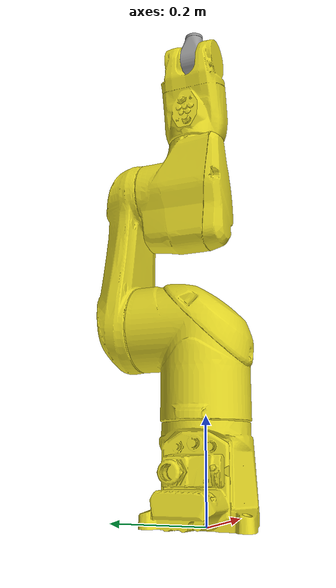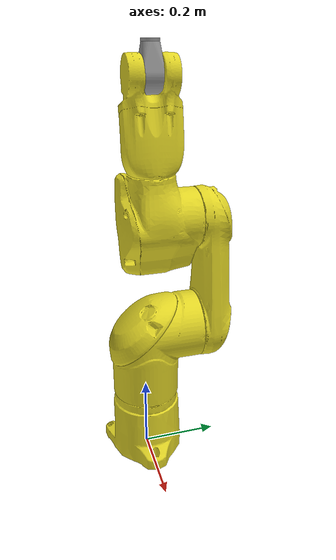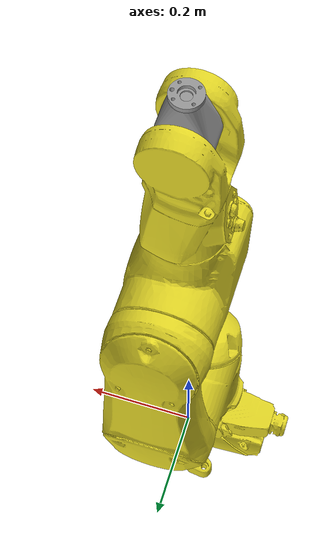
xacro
<?xml version="1.0" ?>
<robot name="staubli_tx2_60_gazebo" xmlns:xacro="http://wiki.ros.org/xacro">
  <!-- TX60 -->
  <xacro:include filename="$(find staubli_tx2_60_gazebo)/urdf/tx2_60_macro.xacro"/>

  <xacro:staubli_tx2_60_robot prefix=""/>

  <!-- Fix robot to Gazebo world -->
  <link name="world"/>
  <joint name="world-base_link-fixed" type="fixed">
    <parent link="world"/>
    <child link="base_link"/>
    <origin xyz="0 0 0" rpy="0 0 0" />
  </joint>
</robot>

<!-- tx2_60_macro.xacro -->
<robot xmlns:xacro="http://wiki.ros.org/xacro">
<xacro:include filename="$(find staubli_tx2_60_support)/urdf/tx2_60_macro.xacro"/>
<xacro:macro name="staubli_tx2_60_robot" params="prefix">

  <!-- get URDF description of Staubli TX60 model -->
  <xacro:staubli_tx2_60 prefix="${prefix}" />

  <!-- transmission list -->
  <transmission name="${prefix}tran1">
    <robotNamespace>/${prefix}</robotNamespace>
    <type>transmission_interface/SimpleTransmission</type>
    <joint name="${prefix}joint_1">
      <hardwareInterface>hardware_interface/EffortJointInterface</hardwareInterface>
    </joint>
    <actuator name="${prefix}motor1">
      <mechanicalReduction>1</mechanicalReduction>
    </actuator>
  </transmission>
  <transmission name="${prefix}tran2">
    <robotNamespace>/${prefix}</robotNamespace>
    <type>transmission_interface/SimpleTransmission</type>
    <joint name="${prefix}joint_2">
      <hardwareInterface>hardware_interface/EffortJointInterface</hardwareInterface>
    </joint>
    <actuator name="${prefix}motor2">
      <mechanicalReduction>1</mechanicalReduction>
    </actuator>
  </transmission>
  <transmission name="${prefix}tran3">
    <robotNamespace>/${prefix}</robotNamespace>
    <type>transmission_interface/SimpleTransmission</type>
    <joint name="${prefix}joint_3">
      <hardwareInterface>hardware_interface/EffortJointInterface</hardwareInterface>
    </joint>
    <actuator name="${prefix}motor3">
      <mechanicalReduction>1</mechanicalReduction>
    </actuator>
  </transmission>
  <transmission name="${prefix}tran4">
    <robotNamespace>/${prefix}</robotNamespace>
    <type>transmission_interface/SimpleTransmission</type>
    <joint name="${prefix}joint_4">
      <hardwareInterface>hardware_interface/EffortJointInterface</hardwareInterface>
    </joint>
    <actuator name="${prefix}motor4">
      <mechanicalReduction>1</mechanicalReduction>
    </actuator>
  </transmission>
  <transmission name="${prefix}tran5">
    <robotNamespace>/${prefix}</robotNamespace>
    <type>transmission_interface/SimpleTransmission</type>
    <joint name="${prefix}joint_5">
      <hardwareInterface>hardware_interface/EffortJointInterface</hardwareInterface>
    </joint>
    <actuator name="${prefix}motor5">
      <mechanicalReduction>1</mechanicalReduction>
    </actuator>
  </transmission>
  <transmission name="${prefix}tran6">
    <robotNamespace>/${prefix}</robotNamespace>
    <type>transmission_interface/SimpleTransmission</type>
    <joint name="${prefix}joint_6">
      <hardwareInterface>hardware_interface/EffortJointInterface</hardwareInterface>
    </joint>
    <actuator name="${prefix}motor6">
      <mechanicalReduction>1</mechanicalReduction>
    </actuator>
  </transmission>
  <!-- end of transmission list -->

  <!-- Gazebo-specific link properties -->
  <gazebo reference="${prefix}base_link">
    <material>Gazebo/Yellow</material>
    <turnGravityOff>true</turnGravityOff>
  </gazebo>
  <gazebo reference="${prefix}link_1">
    <material>Gazebo/Yellow</material>
    <turnGravityOff>true</turnGravityOff>
  </gazebo>
  <gazebo reference="${prefix}link_2">
    <material>Gazebo/Yellow</material>
    <turnGravityOff>true</turnGravityOff>
  </gazebo>
  <gazebo reference="${prefix}link_3">
    <material>Gazebo/Yellow</material>
    <turnGravityOff>true</turnGravityOff>
  </gazebo>
  <gazebo reference="${prefix}link_4">
    <material>Gazebo/Yellow</material>
    <turnGravityOff>true</turnGravityOff>
  </gazebo>
  <gazebo reference="${prefix}link_5">
    <material>Gazebo/Grey</material>
    <turnGravityOff>true</turnGravityOff>
  </gazebo>
  <gazebo reference="${prefix}link_6">
    <material>Gazebo/Grey</material>
    <turnGravityOff>true</turnGravityOff>
  </gazebo>

  <!-- ros_control plugin -->
  <gazebo>
    <plugin name="gazebo_ros_control" filename="libgazebo_ros_control.so">
      <robotNamespace>/${prefix}</robotNamespace>
      <robotSimType>gazebo_ros_control/DefaultRobotHWSim</robotSimType>
    </plugin>
  </gazebo>
  </xacro:macro>
</robot>

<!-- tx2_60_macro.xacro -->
<robot xmlns:xacro="http://wiki.ros.org/xacro">
  <xacro:include filename="$(find staubli_resources)/urdf/common_materials.xacro"/>

  <xacro:macro name="staubli_tx2_60" params="prefix">
    <!-- links: main serial chain -->
    <link name="${prefix}base_link">
      <visual>
        <origin xyz="0 0 0" rpy="0 0 0"/>
        <geometry>
          <mesh filename="package://staubli_tx2_60_support/meshes/tx2_60/visual/base_link.stl"/>
        </geometry>
        <xacro:material_staubli_ral_melon_yellow />
      </visual>
      <collision>
        <origin xyz="0 0 0" rpy="0 0 0"/>
        <geometry>
          <mesh filename="package://staubli_tx2_60_support/meshes/tx2_60/collision/base_link.stl"/>
        </geometry>
      </collision>
      <inertial>
          <mass value="10.733459"/>
          <origin xyz="0.014288 0.000001 0.122264" rpy="0.0 0.0 0.0"/>
          <inertia ixx="0.096590" ixy="-0.000005" ixz="-0.003803"
                                  iyy="0.087591"  iyz="-0.000001"
                                                  izz="0.081632"/>
      </inertial>
    </link>
    <link name="${prefix}link_1">
      <visual>
        <origin xyz="0 0 0" rpy="0 0 0"/>
        <geometry>
          <mesh filename="package://staubli_tx2_60_support/meshes/tx2_60/visual/link_1.stl"/>
        </geometry>
        <xacro:material_staubli_ral_melon_yellow />
      </visual>
      <collision>
        <origin xyz="0 0 0" rpy="0 0 0"/>
        <geometry>
          <mesh filename="package://staubli_tx2_60_support/meshes/tx2_60/collision/link_1.stl"/>
        </geometry>
      </collision>
      <inertial>
          <mass value="16.934564"/>
          <origin xyz="0.019143 0.024764 -0.064596" rpy="0.0 0.0 0.0"/>
          <inertia ixx="0.222318" ixy="0.016499" ixz="0.023794"
                                  iyy="0.208959" iyz="0.031663"
                                                 izz="0.157081"/>
      </inertial>
    </link>
    <link name="${prefix}link_2">
      <visual>
        <origin xyz="0 0 0" rpy="0 0 0"/>
        <geometry>
          <mesh filename="package://staubli_tx2_60_support/meshes/tx2_60/visual/link_2.stl"/>
        </geometry>
        <xacro:material_staubli_ral_melon_yellow />
      </visual>
      <collision>
        <origin xyz="0 0 0" rpy="0 0 0"/>
        <geometry>
          <mesh filename="package://staubli_tx2_60_support/meshes/tx2_60/collision/link_2.stl"/>
        </geometry>
      </collision>
      <inertial>
          <mass value="12.98711"/>
          <origin xyz="-0.000008 0.221181 0.173052" rpy="0.0 0.0 0.0"/>
          <inertia ixx="0.425299" ixy="0.000005" ixz="-0.000004"
                                  iyy="0.452311" iyz="-0.002920"
                                                 izz="0.054493"/>
      </inertial>
    </link>
    <link name="${prefix}link_3">
      <visual>
        <origin xyz="0 0 0" rpy="0 0 0"/>
        <geometry>
          <mesh filename="package://staubli_tx2_60_support/meshes/tx2_60/visual/link_3.stl"/>
        </geometry>
        <xacro:material_staubli_ral_melon_yellow />
      </visual>
      <collision>
        <origin xyz="0 0 0" rpy="0 0 0"/>
        <geometry>
          <mesh filename="package://staubli_tx2_60_support/meshes/tx2_60/collision/link_3.stl"/>
        </geometry>
      </collision>
      <inertial>
          <mass value="7.50151"/>
          <origin xyz="0.000002 0.065008 0.003572" rpy="0.0 0.0 0.0"/>
          <inertia ixx="0.058902" ixy="0.000000" ixz="0.000001"
                                  iyy="0.056884" iyz="-0.003672"
                                                 izz="0.034271"/>
      </inertial>
    </link>
    <link name="${prefix}link_4">
      <visual>
        <origin xyz="0 0 0" rpy="0 0 0"/>
        <geometry>
          <mesh filename="package://staubli_tx2_60_support/meshes/tx2_60/visual/link_4.stl"/>
        </geometry>
        <xacro:material_staubli_ral_melon_yellow />
      </visual>
      <collision>
        <origin xyz="0 0 0" rpy="0 0 0"/>
        <geometry>
          <mesh filename="package://staubli_tx2_60_support/meshes/tx2_60/collision/link_4.stl"/>
        </geometry>
      </collision>
      <inertial>
          <mass value="4.54015"/>
          <origin xyz="-0.002488 0.049988 0.296156" rpy="0.0 0.0 0.0"/>
          <inertia ixx="0.043246" ixy="0.000003" ixz="-0.000683"
                                  iyy="0.038394" iyz="-0.000004"
                                                 izz="0.014525"/>
      </inertial>
    </link>
    <link name="${prefix}link_5">
      <visual>
        <origin xyz="0 0 0" rpy="0 0 0"/>
        <geometry>
          <mesh filename="package://staubli_tx60_support/meshes/tx60/visual/link_5.stl"/>
        </geometry>
        <xacro:material_staubli_ral_grey_aluminium />
      </visual>
      <collision>
        <origin xyz="0 0 0" rpy="0 0 0"/>
        <geometry>
          <mesh filename="package://staubli_tx60_support/meshes/tx60/collision/link_5.stl"/>
        </geometry>
      </collision>
      <inertial>
          <mass value="0.56876"/>
          <origin xyz="0.000000 0.049931 0.222823" rpy="0.0 0.0 0.0"/>
          <inertia ixx="0.001084" ixy="0.000000" ixz="0.000000"
                                  iyy="0.001123" iyz="0.000001"
                                                 izz="0.000383"/>
      </inertial>
    </link>
    <link name="${prefix}link_6">
      <visual>
        <origin xyz="0 0 0" rpy="0 0 0"/>
        <geometry>
          <mesh filename="package://staubli_tx60_support/meshes/tx60/visual/link_6.stl"/>
        </geometry>
        <xacro:material_staubli_ral_grey_aluminium />
      </visual>
      <collision>
        <origin xyz="0 0 0" rpy="0 0 0"/>
        <geometry>
          <mesh filename="package://staubli_tx60_support/meshes/tx60/collision/link_6.stl"/>
        </geometry>
      </collision>
      <inertial>
          <mass value="0.03098"/>
          <origin xyz="-0.000243 0.050000 -0.006293" rpy="0.0 0.0 0.0"/>
          <inertia ixx="0.000012" ixy="0.000000" ixz="0.000000"
                                  iyy="0.000011" iyz="0.000000"
                                                 izz="0.000022"/>
      </inertial>
    </link>

    <!-- joints: main serial chain -->
    <joint name="${prefix}joint_1" type="revolute">
      <origin xyz="0 0 0.375" rpy="0 0 0"/>
      <parent link="${prefix}base_link"/>
      <child link="${prefix}link_1"/>
      <axis xyz="0 0 1"/>
      <!-- from Staubli instruction manual:
      (1) effort limit = 126 Nm if floor mounted
      (2) effort limit = 40 Nm if wall mounted -->
      <!-- nominal velocity limits are used -->
      <limit lower="${radians(-180)}" upper="${radians(180)}" effort="126.0" velocity="${radians(435)}" />
    </joint>
    <joint name="${prefix}joint_2" type="revolute">
      <origin xyz="0 0 0" rpy="0 0 0"/>
      <parent link="${prefix}link_1"/>
      <child link="${prefix}link_2"/>
      <axis xyz="0 1 0"/>
      <!-- nominal velocity limits are used -->
      <limit lower="${radians(-127.5)}" upper="${radians(127.5)}" effort="47.0" velocity="${radians(385)}" />
    </joint>
    <joint name="${prefix}joint_3" type="revolute">
      <origin xyz="0 0.02 0.29" rpy="0 0 0"/>
      <parent link="${prefix}link_2"/>
      <child link="${prefix}link_3"/>
      <axis xyz="0 1 0"/>
      <!-- nominal velocity limits are used -->
      <limit lower="${radians(-152.5)}" upper="${radians(152.5)}" effort="32.0" velocity="${radians(500)}" />
    </joint>
    <joint name="${prefix}joint_4" type="revolute">
      <origin xyz="0 0 0" rpy="0 0 0"/>
      <parent link="${prefix}link_3"/>
      <child link="${prefix}link_4"/>
      <axis xyz="0 0 1"/>
      <!-- nominal velocity limits are used -->
      <limit lower="${radians(-270.0)}" upper="${radians(270.0)}" effort="7.0" velocity="${radians(995)}" />
    </joint>
    <joint name="${prefix}joint_5" type="revolute">
      <origin xyz="0 0 0.31" rpy="0 0 0"/>
      <parent link="${prefix}link_4"/>
      <child link="${prefix}link_5"/>
      <axis xyz="0 1 0"/>
      <!-- nominal velocity limits are used -->
      <limit lower="${radians(-121.0)}" upper="${radians(132.5)}" effort="8.0" velocity="${radians(1065)}" />
    </joint>
    <joint name="${prefix}joint_6" type="revolute">
      <origin xyz="0 0 0.07" rpy="0 0 0"/>
      <parent link="${prefix}link_5"/>
      <child link="${prefix}link_6"/>
      <axis xyz="0 0 1"/>
      <!-- nominal velocity limits are used -->
      <limit lower="${radians(-270.0)}" upper="${radians(270.0)}" effort="2.0" velocity="${radians(1445)}" />
    </joint>

    <!-- ROS-Industrial 'base' frame: base_link to Staubli World Coordinates transform -->
    <link name="${prefix}base" />
    <joint name="${prefix}base_link-base" type="fixed">
      <origin xyz="0 0 0.375" rpy="0 0 0"/>
      <parent link="${prefix}base_link"/>
      <child link="${prefix}base"/>
    </joint>

    <!-- ROS-Industrial 'flange' frame: attachment point for EEF models -->
    <link name="${prefix}flange" />
    <joint name="${prefix}joint_6-flange" type="fixed">
      <origin xyz="0 0 0" rpy="0 ${radians(-90.0)} 0" />
      <parent link="${prefix}link_6" />
      <child link="${prefix}flange" />
    </joint>

    <!-- ROS-Industrial 'tool0' frame: all-zeros tool frame -->
    <link name="${prefix}tool0" />
    <joint name="${prefix}flange-tool0" type="fixed">
      <origin xyz="0 0 0" rpy="0 ${radians(90.0)} 0" />
      <parent link="${prefix}flange" />
      <child link="${prefix}tool0" />
    </joint>
  </xacro:macro>
</robot>
